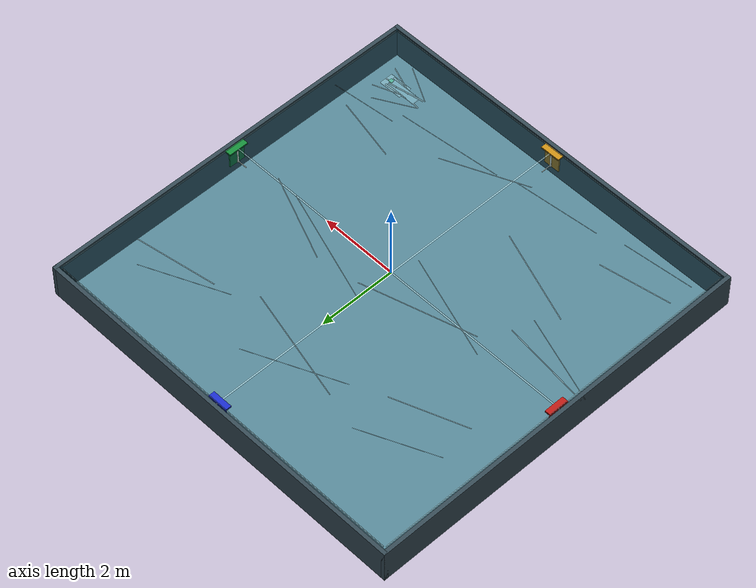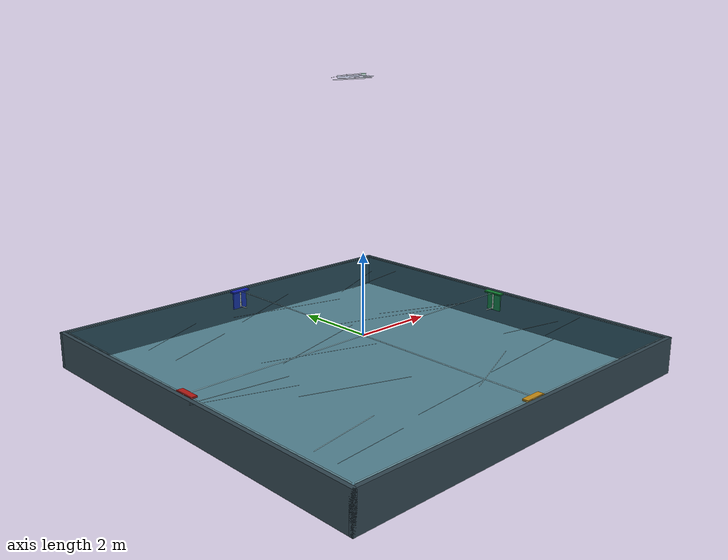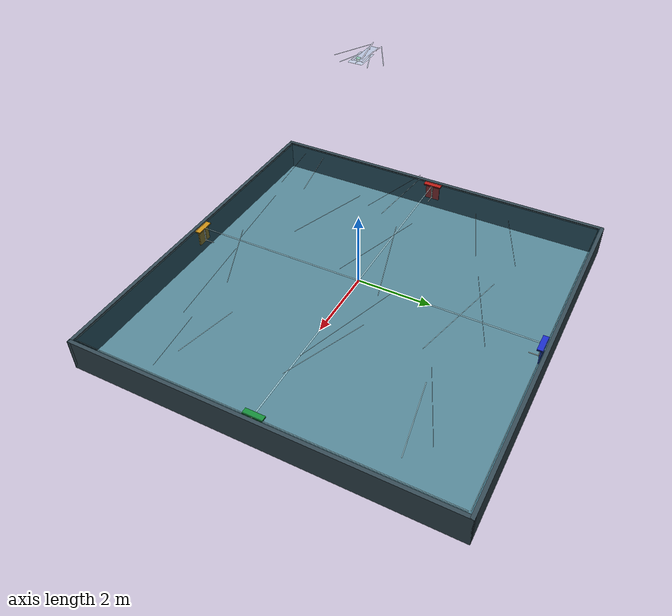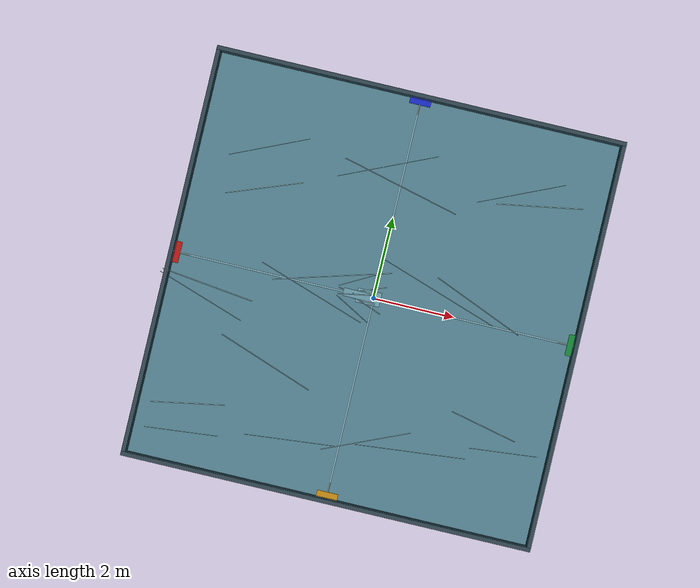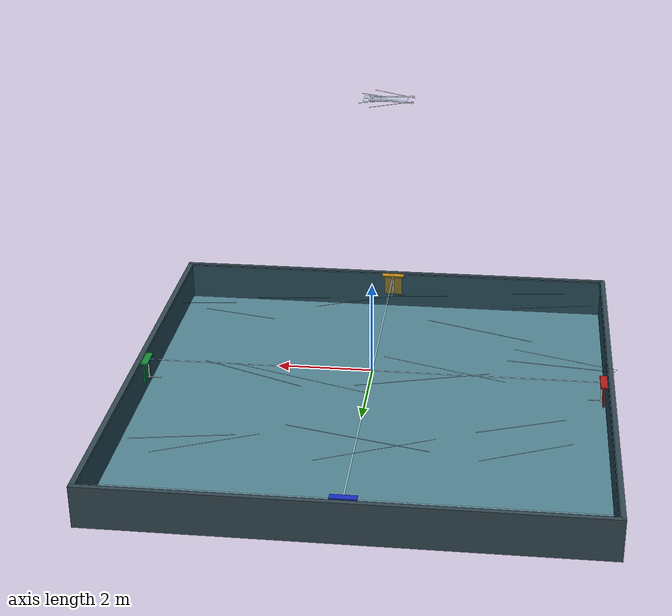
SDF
<sdf version="1.9">
 <world name="kki_rov_pool">
  <physics name="underwater_physics" type="ode">
   <max_step_size>@PHYSICS_STEP_SIZE@</max_step_size>
   <real_time_factor>1.0</real_time_factor>
  </physics>
  <plugin filename="gz-sim-physics-system" name="gz::sim::systems::Physics"/>
  <plugin filename="gz-sim-user-commands-system" name="gz::sim::systems::UserCommands"/>
  <plugin filename="gz-sim-scene-broadcaster-system" name="gz::sim::systems::SceneBroadcaster"/>
  <plugin filename="gz-sim-sensors-system" name="gz::sim::systems::Sensors">
   <render_engine>ogre2</render_engine>
  </plugin>
  <scene>
   <ambient>0.07 0.16 0.19 1</ambient>
   <background>0.005 0.030 0.045 1</background>
   <grid>false</grid>
   <fog>
    <type>linear</type>
    <color>0.02 0.13 0.16 1</color>
    <start>1.8</start>
    <end>8.5</end>
    <density>0.08</density>
   </fog>
  </scene>
  <light type="directional" name="sun">
   <pose>0 0 6 0 0 0</pose>
   <diffuse>0.62 0.82 0.92 1</diffuse>
   <specular>0.55 0.70 0.75 1</specular>
   <direction>-0.4 0.2 -0.9</direction>
  </light>
  <light type="point" name="pool_fill_light">
   <pose>0 0 1.4 0 0 0</pose>
   <diffuse>0.12 0.46 0.58 1</diffuse>
   <specular>0.28 0.52 0.60 1</specular>
   <attenuation>
    <range>12</range>
    <linear>0.06</linear>
    <constant>0.35</constant>
    <quadratic>0.01</quadratic>
   </attenuation>
  </light>
  <model name="pool_floor">
   <static>true</static>
   <link name="link">
    <collision name="collision"><geometry><box><size>10.0 10.0 0.06</size></box></geometry></collision>
    <visual name="visual">
     <geometry><box><size>10.0 10.0 0.06</size></box></geometry>
     <material><ambient>0.38 0.50 0.55 1</ambient><diffuse>0.42 0.58 0.63 1</diffuse></material>
    </visual>
   </link>
   <pose>0 0 -0.88 0 0 0</pose>
  </model>
  <model name="pool_floor_markings">
   <static>true</static>
   <pose>0 0 -0.842 0 0 0</pose>
   <link name="link">
    <visual name="center_line_x">
     <geometry><box><size>9.2 0.025 0.004</size></box></geometry>
     <material><ambient>0.86 0.90 0.88 0.45</ambient><diffuse>0.86 0.90 0.88 0.45</diffuse></material>
     <transparency>0.55</transparency>
    </visual>
    <visual name="center_line_y">
     <geometry><box><size>0.025 9.2 0.004</size></box></geometry>
     <material><ambient>0.86 0.90 0.88 0.45</ambient><diffuse>0.86 0.90 0.88 0.45</diffuse></material>
     <transparency>0.55</transparency>
    </visual>
    <visual name="tile_line_x_neg">
     <pose>-2.5 0 0 0 0 0</pose>
     <geometry><box><size>0.016 9.2 0.004</size></box></geometry>
     <material><ambient>0.70 0.82 0.84 0.32</ambient><diffuse>0.70 0.82 0.84 0.32</diffuse></material>
     <transparency>0.68</transparency>
    </visual>
    <visual name="tile_line_x_pos">
     <pose>2.5 0 0 0 0 0</pose>
     <geometry><box><size>0.016 9.2 0.004</size></box></geometry>
     <material><ambient>0.70 0.82 0.84 0.32</ambient><diffuse>0.70 0.82 0.84 0.32</diffuse></material>
     <transparency>0.68</transparency>
    </visual>
    <visual name="tile_line_y_neg">
     <pose>0 -2.5 0 0 0 0</pose>
     <geometry><box><size>9.2 0.016 0.004</size></box></geometry>
     <material><ambient>0.70 0.82 0.84 0.32</ambient><diffuse>0.70 0.82 0.84 0.32</diffuse></material>
     <transparency>0.68</transparency>
    </visual>
    <visual name="tile_line_y_pos">
     <pose>0 2.5 0 0 0 0</pose>
     <geometry><box><size>9.2 0.016 0.004</size></box></geometry>
     <material><ambient>0.70 0.82 0.84 0.32</ambient><diffuse>0.70 0.82 0.84 0.32</diffuse></material>
     <transparency>0.68</transparency>
    </visual>
   </link>
  </model>
  <model name="water_surface">
   <static>true</static>
   <link name="link">
    <visual name="surface_visual">
     <geometry><plane><normal>0 0 1</normal><size>10.0 10.0</size></plane></geometry>
     <material>
      <ambient>0.015 0.16 0.22 0.26</ambient>
      <diffuse>0.03 0.38 0.50 0.26</diffuse>
      <specular>0.92 0.98 1.0 0.95</specular>
     </material>
     <transparency>0.42</transparency>
    </visual>
    <visual name="surface_under_glass">
     <pose>0 0 -0.010 0 0 0</pose>
     <geometry><box><size>9.95 9.95 0.006</size></box></geometry>
     <material>
      <ambient>0.00 0.18 0.24 0.16</ambient>
      <diffuse>0.02 0.32 0.42 0.16</diffuse>
      <specular>0.85 0.96 1.0 0.75</specular>
     </material>
     <transparency>0.86</transparency>
    </visual>
    <visual name="surface_highlight_x">
     <pose>0 0 0.004 0 0 0</pose>
     <geometry><box><size>9.7 0.035 0.003</size></box></geometry>
     <material><ambient>0.75 0.95 1.0 0.45</ambient><diffuse>0.75 0.95 1.0 0.45</diffuse></material>
     <transparency>0.55</transparency>
    </visual>
    <visual name="surface_highlight_y">
     <pose>0 0 0.006 0 0 0</pose>
     <geometry><box><size>0.035 9.7 0.003</size></box></geometry>
     <material><ambient>0.75 0.95 1.0 0.45</ambient><diffuse>0.75 0.95 1.0 0.45</diffuse></material>
     <transparency>0.55</transparency>
    </visual>
    <visual name="meniscus_wall_x_pos">
     <pose>4.96 0 0.012 0 0 0</pose>
     <geometry><box><size>0.012 9.85 0.020</size></box></geometry>
     <material>
      <ambient>0.72 0.96 1.0 0.24</ambient>
      <diffuse>0.72 0.96 1.0 0.24</diffuse>
      <specular>0.90 1.0 1.0 0.65</specular>
     </material>
     <transparency>0.76</transparency>
    </visual>
    <visual name="meniscus_wall_x_neg">
     <pose>-4.96 0 0.012 0 0 0</pose>
     <geometry><box><size>0.012 9.85 0.020</size></box></geometry>
     <material>
      <ambient>0.72 0.96 1.0 0.24</ambient>
      <diffuse>0.72 0.96 1.0 0.24</diffuse>
      <specular>0.90 1.0 1.0 0.65</specular>
     </material>
     <transparency>0.76</transparency>
    </visual>
    <visual name="meniscus_wall_y_pos">
     <pose>0 4.96 0.012 0 0 0</pose>
     <geometry><box><size>9.85 0.012 0.020</size></box></geometry>
     <material>
      <ambient>0.72 0.96 1.0 0.24</ambient>
      <diffuse>0.72 0.96 1.0 0.24</diffuse>
      <specular>0.90 1.0 1.0 0.65</specular>
     </material>
     <transparency>0.76</transparency>
    </visual>
    <visual name="meniscus_wall_y_neg">
     <pose>0 -4.96 0.012 0 0 0</pose>
     <geometry><box><size>9.85 0.012 0.020</size></box></geometry>
     <material>
      <ambient>0.72 0.96 1.0 0.24</ambient>
      <diffuse>0.72 0.96 1.0 0.24</diffuse>
      <specular>0.90 1.0 1.0 0.65</specular>
     </material>
     <transparency>0.76</transparency>
    </visual>
   </link>
  </model>
  <model name="water_surface_ripples">
   <static>true</static>
   <pose>0 0 0.012 0 0 0</pose>
   <link name="link">
    <visual name="ripple_1">
     <pose>-3.8 -3.5 0 0 0 0.18</pose>
     <geometry><box><size>1.8 0.020 0.002</size></box></geometry>
     <material>
      <ambient>0.82 0.97 1.0 0.30</ambient>
      <diffuse>0.82 0.97 1.0 0.30</diffuse>
      <specular>0.85 0.95 1.0 0.45</specular>
     </material>
     <transparency>0.70</transparency>
    </visual>
    <visual name="ripple_2">
     <pose>-2.2 -2.1 0 0 0 -0.34</pose>
     <geometry><box><size>2.5 0.018 0.002</size></box></geometry>
     <material>
      <ambient>0.82 0.97 1.0 0.26</ambient>
      <diffuse>0.82 0.97 1.0 0.26</diffuse>
      <specular>0.85 0.95 1.0 0.40</specular>
     </material>
     <transparency>0.74</transparency>
    </visual>
    <visual name="ripple_3">
     <pose>0.6 -3.4 0 0 0 0.41</pose>
     <geometry><box><size>2.2 0.016 0.002</size></box></geometry>
     <material>
      <ambient>0.82 0.97 1.0 0.22</ambient>
      <diffuse>0.82 0.97 1.0 0.22</diffuse>
      <specular>0.85 0.95 1.0 0.38</specular>
     </material>
     <transparency>0.78</transparency>
    </visual>
    <visual name="ripple_4">
     <pose>3.3 -2.4 0 0 0 -0.22</pose>
     <geometry><box><size>1.7 0.018 0.002</size></box></geometry>
     <material>
      <ambient>0.82 0.97 1.0 0.26</ambient>
      <diffuse>0.82 0.97 1.0 0.26</diffuse>
      <specular>0.85 0.95 1.0 0.40</specular>
     </material>
     <transparency>0.74</transparency>
    </visual>
    <visual name="ripple_5">
     <pose>-4.0 -0.6 0 0 0 -0.12</pose>
     <geometry><box><size>2.3 0.020 0.002</size></box></geometry>
     <material>
      <ambient>0.82 0.97 1.0 0.30</ambient>
      <diffuse>0.82 0.97 1.0 0.30</diffuse>
      <specular>0.85 0.95 1.0 0.45</specular>
     </material>
     <transparency>0.70</transparency>
    </visual>
    <visual name="ripple_6">
     <pose>-1.1 0.3 0 0 0 0.28</pose>
     <geometry><box><size>2.9 0.018 0.002</size></box></geometry>
     <material>
      <ambient>0.82 0.97 1.0 0.22</ambient>
      <diffuse>0.82 0.97 1.0 0.22</diffuse>
      <specular>0.85 0.95 1.0 0.38</specular>
     </material>
     <transparency>0.78</transparency>
    </visual>
    <visual name="ripple_7">
     <pose>2.5 0.4 0 0 0 -0.39</pose>
     <geometry><box><size>2.4 0.016 0.002</size></box></geometry>
     <material>
      <ambient>0.82 0.97 1.0 0.24</ambient>
      <diffuse>0.82 0.97 1.0 0.24</diffuse>
      <specular>0.85 0.95 1.0 0.38</specular>
     </material>
     <transparency>0.76</transparency>
    </visual>
    <visual name="ripple_8">
     <pose>-3.2 2.0 0 0 0 0.36</pose>
     <geometry><box><size>1.9 0.018 0.002</size></box></geometry>
     <material>
      <ambient>0.82 0.97 1.0 0.28</ambient>
      <diffuse>0.82 0.97 1.0 0.28</diffuse>
      <specular>0.85 0.95 1.0 0.42</specular>
     </material>
     <transparency>0.72</transparency>
    </visual>
    <visual name="ripple_9">
     <pose>0.0 2.8 0 0 0 -0.24</pose>
     <geometry><box><size>3.0 0.017 0.002</size></box></geometry>
     <material>
      <ambient>0.82 0.97 1.0 0.22</ambient>
      <diffuse>0.82 0.97 1.0 0.22</diffuse>
      <specular>0.85 0.95 1.0 0.38</specular>
     </material>
     <transparency>0.78</transparency>
    </visual>
    <visual name="ripple_10">
     <pose>3.4 3.1 0 0 0 0.17</pose>
     <geometry><box><size>2.1 0.020 0.002</size></box></geometry>
     <material>
      <ambient>0.82 0.97 1.0 0.30</ambient>
      <diffuse>0.82 0.97 1.0 0.30</diffuse>
      <specular>0.85 0.95 1.0 0.45</specular>
     </material>
     <transparency>0.70</transparency>
    </visual>
   </link>
  </model>
  <model name="water_surface_wavefield">
   <static>true</static>
   <pose>0 0 0.019 0 0 0</pose>
   <link name="link">
    <visual name="wave_train_a_1">
     <pose>-3.8 -4.2 0 0 0 0.10</pose>
     <geometry><box><size>1.8 0.010 0.002</size></box></geometry>
     <material>
      <ambient>0.75 0.96 1.0 0.20</ambient>
      <diffuse>0.75 0.96 1.0 0.20</diffuse>
      <specular>0.95 1.0 1.0 0.50</specular>
     </material>
     <transparency>0.80</transparency>
    </visual>
    <visual name="wave_train_a_2">
     <pose>-1.2 -3.8 0 0 0 0.10</pose>
     <geometry><box><size>2.2 0.010 0.002</size></box></geometry>
     <material>
      <ambient>0.75 0.96 1.0 0.18</ambient>
      <diffuse>0.75 0.96 1.0 0.18</diffuse>
      <specular>0.95 1.0 1.0 0.48</specular>
     </material>
     <transparency>0.82</transparency>
    </visual>
    <visual name="wave_train_a_3">
     <pose>1.7 -3.4 0 0 0 0.10</pose>
     <geometry><box><size>2.7 0.010 0.002</size></box></geometry>
     <material>
      <ambient>0.75 0.96 1.0 0.20</ambient>
      <diffuse>0.75 0.96 1.0 0.20</diffuse>
      <specular>0.95 1.0 1.0 0.50</specular>
     </material>
     <transparency>0.80</transparency>
    </visual>
    <visual name="wave_train_a_4">
     <pose>3.9 -2.9 0 0 0 0.10</pose>
     <geometry><box><size>1.7 0.010 0.002</size></box></geometry>
     <material>
      <ambient>0.75 0.96 1.0 0.18</ambient>
      <diffuse>0.75 0.96 1.0 0.18</diffuse>
      <specular>0.95 1.0 1.0 0.48</specular>
     </material>
     <transparency>0.82</transparency>
    </visual>
    <visual name="wave_train_b_1">
     <pose>-4.1 -0.9 0 0 0 -0.32</pose>
     <geometry><box><size>2.3 0.011 0.002</size></box></geometry>
     <material>
      <ambient>0.82 0.98 1.0 0.16</ambient>
      <diffuse>0.82 0.98 1.0 0.16</diffuse>
      <specular>0.95 1.0 1.0 0.44</specular>
     </material>
     <transparency>0.84</transparency>
    </visual>
    <visual name="wave_train_b_2">
     <pose>-1.5 -0.2 0 0 0 -0.32</pose>
     <geometry><box><size>2.8 0.011 0.002</size></box></geometry>
     <material>
      <ambient>0.82 0.98 1.0 0.16</ambient>
      <diffuse>0.82 0.98 1.0 0.16</diffuse>
      <specular>0.95 1.0 1.0 0.44</specular>
     </material>
     <transparency>0.84</transparency>
    </visual>
    <visual name="wave_train_b_3">
     <pose>1.5 0.5 0 0 0 -0.32</pose>
     <geometry><box><size>3.1 0.011 0.002</size></box></geometry>
     <material>
      <ambient>0.82 0.98 1.0 0.17</ambient>
      <diffuse>0.82 0.98 1.0 0.17</diffuse>
      <specular>0.95 1.0 1.0 0.46</specular>
     </material>
     <transparency>0.83</transparency>
    </visual>
    <visual name="wave_train_c_1">
     <pose>-3.3 3.0 0 0 0 0.42</pose>
     <geometry><box><size>2.0 0.010 0.002</size></box></geometry>
     <material>
      <ambient>0.70 0.92 1.0 0.15</ambient>
      <diffuse>0.70 0.92 1.0 0.15</diffuse>
      <specular>0.95 1.0 1.0 0.42</specular>
     </material>
     <transparency>0.85</transparency>
    </visual>
    <visual name="wave_train_c_2">
     <pose>-0.4 3.2 0 0 0 0.42</pose>
     <geometry><box><size>2.5 0.010 0.002</size></box></geometry>
     <material>
      <ambient>0.70 0.92 1.0 0.16</ambient>
      <diffuse>0.70 0.92 1.0 0.16</diffuse>
      <specular>0.95 1.0 1.0 0.44</specular>
     </material>
     <transparency>0.84</transparency>
    </visual>
    <visual name="wave_train_c_3">
     <pose>2.9 3.3 0 0 0 0.42</pose>
     <geometry><box><size>2.2 0.010 0.002</size></box></geometry>
     <material>
      <ambient>0.70 0.92 1.0 0.15</ambient>
      <diffuse>0.70 0.92 1.0 0.15</diffuse>
      <specular>0.95 1.0 1.0 0.42</specular>
     </material>
     <transparency>0.85</transparency>
    </visual>
   </link>
  </model>
  <model name="water_volume">
   <static>true</static>
   <pose>0 0 -0.43 0 0 0</pose>
   <link name="link">
    <visual name="volume_visual">
     <geometry><box><size>9.9 9.9 0.84</size></box></geometry>
     <material>
      <ambient>0.00 0.16 0.24 0.18</ambient>
      <diffuse>0.02 0.34 0.50 0.18</diffuse>
      <specular>0.20 0.35 0.42 0.25</specular>
     </material>
     <transparency>0.82</transparency>
    </visual>
   </link>
  </model>
  <model name="underwater_depth_haze">
   <static>true</static>
   <link name="link">
    <visual name="upper_haze">
     <pose>0 0 -0.20 0 0 0</pose>
     <geometry><box><size>9.85 9.85 0.22</size></box></geometry>
     <material><ambient>0.00 0.12 0.16 0.10</ambient><diffuse>0.01 0.23 0.28 0.10</diffuse></material>
     <transparency>0.92</transparency>
    </visual>
    <visual name="mid_haze">
     <pose>0 0 -0.48 0 0 0</pose>
     <geometry><box><size>9.85 9.85 0.28</size></box></geometry>
     <material><ambient>0.00 0.10 0.13 0.16</ambient><diffuse>0.01 0.19 0.24 0.16</diffuse></material>
     <transparency>0.88</transparency>
    </visual>
    <visual name="bottom_haze">
     <pose>0 0 -0.73 0 0 0</pose>
     <geometry><box><size>9.85 9.85 0.20</size></box></geometry>
     <material><ambient>0.00 0.08 0.10 0.20</ambient><diffuse>0.01 0.15 0.19 0.20</diffuse></material>
     <transparency>0.84</transparency>
    </visual>
   </link>
  </model>
  <model name="suspended_particles">
   <static>true</static>
   <link name="link">
    <visual name="particle_01">
     <pose>-4.2 -2.8 -0.25 0 0 0</pose>
     <geometry><sphere><radius>0.006</radius></sphere></geometry>
     <material><ambient>0.80 0.95 0.90 0.18</ambient><diffuse>0.80 0.95 0.90 0.18</diffuse></material>
     <transparency>0.82</transparency>
    </visual>
    <visual name="particle_02">
     <pose>-3.6 1.9 -0.44 0 0 0</pose>
     <geometry><sphere><radius>0.004</radius></sphere></geometry>
     <material><ambient>0.80 0.95 0.90 0.16</ambient><diffuse>0.80 0.95 0.90 0.16</diffuse></material>
     <transparency>0.84</transparency>
    </visual>
    <visual name="particle_03">
     <pose>-3.1 3.4 -0.62 0 0 0</pose>
     <geometry><sphere><radius>0.005</radius></sphere></geometry>
     <material><ambient>0.80 0.95 0.90 0.17</ambient><diffuse>0.80 0.95 0.90 0.17</diffuse></material>
     <transparency>0.83</transparency>
    </visual>
    <visual name="particle_04">
     <pose>-2.5 -3.8 -0.55 0 0 0</pose>
     <geometry><sphere><radius>0.004</radius></sphere></geometry>
     <material><ambient>0.80 0.95 0.90 0.16</ambient><diffuse>0.80 0.95 0.90 0.16</diffuse></material>
     <transparency>0.84</transparency>
    </visual>
    <visual name="particle_05">
     <pose>-1.8 -0.8 -0.32 0 0 0</pose>
     <geometry><sphere><radius>0.006</radius></sphere></geometry>
     <material><ambient>0.80 0.95 0.90 0.18</ambient><diffuse>0.80 0.95 0.90 0.18</diffuse></material>
     <transparency>0.82</transparency>
    </visual>
    <visual name="particle_06">
     <pose>-1.2 2.6 -0.70 0 0 0</pose>
     <geometry><sphere><radius>0.004</radius></sphere></geometry>
     <material><ambient>0.80 0.95 0.90 0.16</ambient><diffuse>0.80 0.95 0.90 0.16</diffuse></material>
     <transparency>0.84</transparency>
    </visual>
    <visual name="particle_07">
     <pose>-0.5 -4.1 -0.40 0 0 0</pose>
     <geometry><sphere><radius>0.005</radius></sphere></geometry>
     <material><ambient>0.80 0.95 0.90 0.17</ambient><diffuse>0.80 0.95 0.90 0.17</diffuse></material>
     <transparency>0.83</transparency>
    </visual>
    <visual name="particle_08">
     <pose>0.2 -1.7 -0.58 0 0 0</pose>
     <geometry><sphere><radius>0.006</radius></sphere></geometry>
     <material><ambient>0.80 0.95 0.90 0.18</ambient><diffuse>0.80 0.95 0.90 0.18</diffuse></material>
     <transparency>0.82</transparency>
    </visual>
    <visual name="particle_09">
     <pose>0.9 3.7 -0.28 0 0 0</pose>
     <geometry><sphere><radius>0.004</radius></sphere></geometry>
     <material><ambient>0.80 0.95 0.90 0.16</ambient><diffuse>0.80 0.95 0.90 0.16</diffuse></material>
     <transparency>0.84</transparency>
    </visual>
    <visual name="particle_10">
     <pose>1.5 0.9 -0.68 0 0 0</pose>
     <geometry><sphere><radius>0.005</radius></sphere></geometry>
     <material><ambient>0.80 0.95 0.90 0.17</ambient><diffuse>0.80 0.95 0.90 0.17</diffuse></material>
     <transparency>0.83</transparency>
    </visual>
    <visual name="particle_11">
     <pose>2.1 -2.9 -0.22 0 0 0</pose>
     <geometry><sphere><radius>0.004</radius></sphere></geometry>
     <material><ambient>0.80 0.95 0.90 0.16</ambient><diffuse>0.80 0.95 0.90 0.16</diffuse></material>
     <transparency>0.84</transparency>
    </visual>
    <visual name="particle_12">
     <pose>2.8 2.1 -0.50 0 0 0</pose>
     <geometry><sphere><radius>0.006</radius></sphere></geometry>
     <material><ambient>0.80 0.95 0.90 0.18</ambient><diffuse>0.80 0.95 0.90 0.18</diffuse></material>
     <transparency>0.82</transparency>
    </visual>
    <visual name="particle_13">
     <pose>3.4 -0.2 -0.72 0 0 0</pose>
     <geometry><sphere><radius>0.004</radius></sphere></geometry>
     <material><ambient>0.80 0.95 0.90 0.16</ambient><diffuse>0.80 0.95 0.90 0.16</diffuse></material>
     <transparency>0.84</transparency>
    </visual>
    <visual name="particle_14">
     <pose>4.0 3.2 -0.36 0 0 0</pose>
     <geometry><sphere><radius>0.005</radius></sphere></geometry>
     <material><ambient>0.80 0.95 0.90 0.17</ambient><diffuse>0.80 0.95 0.90 0.17</diffuse></material>
     <transparency>0.83</transparency>
    </visual>
    <visual name="particle_15">
     <pose>4.3 -3.5 -0.60 0 0 0</pose>
     <geometry><sphere><radius>0.006</radius></sphere></geometry>
     <material><ambient>0.80 0.95 0.90 0.18</ambient><diffuse>0.80 0.95 0.90 0.18</diffuse></material>
     <transparency>0.82</transparency>
    </visual>
    <visual name="particle_16">
     <pose>-0.1 0.2 -0.24 0 0 0</pose>
     <geometry><sphere><radius>0.004</radius></sphere></geometry>
     <material><ambient>0.80 0.95 0.90 0.16</ambient><diffuse>0.80 0.95 0.90 0.16</diffuse></material>
     <transparency>0.84</transparency>
    </visual>
   </link>
  </model>
  <model name="bubble_columns">
   <static>true</static>
   <link name="link">
    <visual name="bubble_1">
     <pose>-4.4 -4.0 -0.70 0 0 0</pose>
     <geometry><sphere><radius>0.018</radius></sphere></geometry>
     <material><ambient>0.80 0.96 1.0 0.34</ambient><diffuse>0.80 0.96 1.0 0.34</diffuse></material>
     <transparency>0.66</transparency>
    </visual>
    <visual name="bubble_2">
     <pose>-4.3 -3.9 -0.52 0 0 0</pose>
     <geometry><sphere><radius>0.012</radius></sphere></geometry>
     <material><ambient>0.80 0.96 1.0 0.30</ambient><diffuse>0.80 0.96 1.0 0.30</diffuse></material>
     <transparency>0.70</transparency>
    </visual>
    <visual name="bubble_3">
     <pose>-4.5 -4.1 -0.32 0 0 0</pose>
     <geometry><sphere><radius>0.015</radius></sphere></geometry>
     <material><ambient>0.80 0.96 1.0 0.32</ambient><diffuse>0.80 0.96 1.0 0.32</diffuse></material>
     <transparency>0.68</transparency>
    </visual>
    <visual name="bubble_4">
     <pose>-4.35 -4.05 -0.13 0 0 0</pose>
     <geometry><sphere><radius>0.010</radius></sphere></geometry>
     <material><ambient>0.80 0.96 1.0 0.28</ambient><diffuse>0.80 0.96 1.0 0.28</diffuse></material>
     <transparency>0.72</transparency>
    </visual>
    <visual name="bubble_5">
     <pose>4.2 -3.7 -0.68 0 0 0</pose>
     <geometry><sphere><radius>0.014</radius></sphere></geometry>
     <material><ambient>0.80 0.96 1.0 0.30</ambient><diffuse>0.80 0.96 1.0 0.30</diffuse></material>
     <transparency>0.70</transparency>
    </visual>
    <visual name="bubble_6">
     <pose>4.3 -3.8 -0.44 0 0 0</pose>
     <geometry><sphere><radius>0.018</radius></sphere></geometry>
     <material><ambient>0.80 0.96 1.0 0.34</ambient><diffuse>0.80 0.96 1.0 0.34</diffuse></material>
     <transparency>0.66</transparency>
    </visual>
    <visual name="bubble_7">
     <pose>4.1 -3.6 -0.22 0 0 0</pose>
     <geometry><sphere><radius>0.011</radius></sphere></geometry>
     <material><ambient>0.80 0.96 1.0 0.28</ambient><diffuse>0.80 0.96 1.0 0.28</diffuse></material>
     <transparency>0.72</transparency>
    </visual>
    <visual name="bubble_8">
     <pose>-3.9 4.0 -0.62 0 0 0</pose>
     <geometry><sphere><radius>0.016</radius></sphere></geometry>
     <material><ambient>0.80 0.96 1.0 0.32</ambient><diffuse>0.80 0.96 1.0 0.32</diffuse></material>
     <transparency>0.68</transparency>
    </visual>
    <visual name="bubble_9">
     <pose>-4.1 3.8 -0.36 0 0 0</pose>
     <geometry><sphere><radius>0.012</radius></sphere></geometry>
     <material><ambient>0.80 0.96 1.0 0.30</ambient><diffuse>0.80 0.96 1.0 0.30</diffuse></material>
     <transparency>0.70</transparency>
    </visual>
    <visual name="bubble_10">
     <pose>-4.0 3.9 -0.12 0 0 0</pose>
     <geometry><sphere><radius>0.010</radius></sphere></geometry>
     <material><ambient>0.80 0.96 1.0 0.28</ambient><diffuse>0.80 0.96 1.0 0.28</diffuse></material>
     <transparency>0.72</transparency>
    </visual>
    <visual name="bubble_11">
     <pose>3.8 4.2 -0.58 0 0 0</pose>
     <geometry><sphere><radius>0.017</radius></sphere></geometry>
     <material><ambient>0.80 0.96 1.0 0.33</ambient><diffuse>0.80 0.96 1.0 0.33</diffuse></material>
     <transparency>0.67</transparency>
    </visual>
    <visual name="bubble_12">
     <pose>4.0 4.0 -0.30 0 0 0</pose>
     <geometry><sphere><radius>0.012</radius></sphere></geometry>
     <material><ambient>0.80 0.96 1.0 0.30</ambient><diffuse>0.80 0.96 1.0 0.30</diffuse></material>
     <transparency>0.70</transparency>
    </visual>
   </link>
  </model>
  <model name="floor_caustics">
   <static>true</static>
   <pose>0 0 -0.845 0 0 0.35</pose>
   <link name="link">
    <visual name="caustic_1">
     <pose>-3.8 -3.2 0 0 0 0.20</pose>
     <geometry><box><size>2.2 0.018 0.004</size></box></geometry>
     <material><ambient>0.55 0.95 1.0 0.35</ambient><diffuse>0.55 0.95 1.0 0.35</diffuse></material>
     <transparency>0.62</transparency>
    </visual>
    <visual name="caustic_2">
     <pose>-1.5 -2.2 0 0 0 -0.28</pose>
     <geometry><box><size>2.8 0.018 0.004</size></box></geometry>
     <material><ambient>0.55 0.95 1.0 0.35</ambient><diffuse>0.55 0.95 1.0 0.35</diffuse></material>
     <transparency>0.62</transparency>
    </visual>
    <visual name="caustic_3">
     <pose>1.9 -3.0 0 0 0 0.36</pose>
     <geometry><box><size>2.5 0.018 0.004</size></box></geometry>
     <material><ambient>0.55 0.95 1.0 0.35</ambient><diffuse>0.55 0.95 1.0 0.35</diffuse></material>
     <transparency>0.62</transparency>
    </visual>
    <visual name="caustic_4">
     <pose>3.6 -1.2 0 0 0 -0.15</pose>
     <geometry><box><size>2.1 0.018 0.004</size></box></geometry>
     <material><ambient>0.55 0.95 1.0 0.35</ambient><diffuse>0.55 0.95 1.0 0.35</diffuse></material>
     <transparency>0.62</transparency>
    </visual>
    <visual name="caustic_5">
     <pose>-3.4 0.2 0 0 0 -0.22</pose>
     <geometry><box><size>2.7 0.018 0.004</size></box></geometry>
     <material><ambient>0.55 0.95 1.0 0.35</ambient><diffuse>0.55 0.95 1.0 0.35</diffuse></material>
     <transparency>0.62</transparency>
    </visual>
    <visual name="caustic_6">
     <pose>-0.2 0.8 0 0 0 0.31</pose>
     <geometry><box><size>3.0 0.018 0.004</size></box></geometry>
     <material><ambient>0.55 0.95 1.0 0.35</ambient><diffuse>0.55 0.95 1.0 0.35</diffuse></material>
     <transparency>0.62</transparency>
    </visual>
    <visual name="caustic_7">
     <pose>3.2 1.2 0 0 0 -0.33</pose>
     <geometry><box><size>2.4 0.018 0.004</size></box></geometry>
     <material><ambient>0.55 0.95 1.0 0.35</ambient><diffuse>0.55 0.95 1.0 0.35</diffuse></material>
     <transparency>0.62</transparency>
    </visual>
    <visual name="caustic_8">
     <pose>-2.1 3.1 0 0 0 0.18</pose>
     <geometry><box><size>2.6 0.018 0.004</size></box></geometry>
     <material><ambient>0.55 0.95 1.0 0.35</ambient><diffuse>0.55 0.95 1.0 0.35</diffuse></material>
     <transparency>0.62</transparency>
    </visual>
    <visual name="caustic_9">
     <pose>1.5 3.3 0 0 0 -0.26</pose>
     <geometry><box><size>2.9 0.018 0.004</size></box></geometry>
     <material><ambient>0.55 0.95 1.0 0.35</ambient><diffuse>0.55 0.95 1.0 0.35</diffuse></material>
     <transparency>0.62</transparency>
    </visual>
   </link>
  </model>
  <model name="pool_wall_north">
   <static>true</static>
   <pose>0 5.05 -0.43 0 0 0</pose>
   <link name="link">
    <collision name="collision"><geometry><box><size>10.2 0.10 0.90</size></box></geometry></collision>
    <visual name="visual">
     <geometry><box><size>10.2 0.10 0.90</size></box></geometry>
     <material><ambient>0.16 0.22 0.26 1</ambient><diffuse>0.20 0.28 0.32 1</diffuse></material>
    </visual>
   </link>
  </model>
  <model name="pool_wall_south">
   <static>true</static>
   <pose>0 -5.05 -0.43 0 0 0</pose>
   <link name="link">
    <collision name="collision"><geometry><box><size>10.2 0.10 0.90</size></box></geometry></collision>
    <visual name="visual">
     <geometry><box><size>10.2 0.10 0.90</size></box></geometry>
     <material><ambient>0.16 0.22 0.26 1</ambient><diffuse>0.20 0.28 0.32 1</diffuse></material>
    </visual>
   </link>
  </model>
  <model name="pool_wall_east">
   <static>true</static>
   <pose>5.05 0 -0.43 0 0 0</pose>
   <link name="link">
    <collision name="collision"><geometry><box><size>0.10 10.2 0.90</size></box></geometry></collision>
    <visual name="visual">
     <geometry><box><size>0.10 10.2 0.90</size></box></geometry>
     <material><ambient>0.16 0.22 0.26 1</ambient><diffuse>0.20 0.28 0.32 1</diffuse></material>
    </visual>
   </link>
  </model>
  <model name="pool_wall_west">
   <static>true</static>
   <pose>-5.05 0 -0.43 0 0 0</pose>
   <link name="link">
    <collision name="collision"><geometry><box><size>0.10 10.2 0.90</size></box></geometry></collision>
    <visual name="visual">
     <geometry><box><size>0.10 10.2 0.90</size></box></geometry>
     <material><ambient>0.16 0.22 0.26 1</ambient><diffuse>0.20 0.28 0.32 1</diffuse></material>
    </visual>
   </link>
  </model>
  <model name="hook_A">
   <static>true</static>
   <pose>-4.86 0 -0.43 0 0 0</pose>
   <link name="link">
    <visual name="wall_marker">
     <pose>-0.050 0 0.190 0 0 0</pose>
     <geometry><box><size>0.035 0.42 0.50</size></box></geometry>
     <material><ambient>0.45 0.06 0.05 1</ambient><diffuse>0.62 0.09 0.07 1</diffuse></material>
    </visual>
    <visual name="top_clamp">
     <pose>-0.035 0 0.425 0 0 0</pose>
     <geometry><box><size>0.16 0.52 0.045</size></box></geometry>
     <material><ambient>0.58 0.08 0.06 1</ambient><diffuse>0.72 0.10 0.08 1</diffuse></material>
    </visual>
    <visual name="top_wall_pipe">
     <pose>-0.050 0 0.420 0 1.5708 0</pose>
     <geometry><cylinder><radius>0.018</radius><length>0.14</length></cylinder></geometry>
     <material>
      <ambient>0.90 0.90 0.84 1</ambient>
      <diffuse>0.96 0.96 0.90 1</diffuse>
      <specular>0.55 0.55 0.50 1</specular>
     </material>
    </visual>
    <visual name="vertical_pvc">
     <pose>0.000 0 0.205 0 0 0</pose>
     <geometry><cylinder><radius>0.018</radius><length>0.43</length></cylinder></geometry>
     <material>
      <ambient>0.90 0.90 0.84 1</ambient>
      <diffuse>0.96 0.96 0.90 1</diffuse>
      <specular>0.55 0.55 0.50 1</specular>
     </material>
    </visual>
    <visual name="lower_elbow">
     <geometry><sphere><radius>0.026</radius></sphere></geometry>
     <material><ambient>0.86 0.86 0.80 1</ambient><diffuse>0.94 0.94 0.88 1</diffuse></material>
    </visual>
    <visual name="peg">
     <pose>0.130 0 0.000 0 1.5708 0</pose>
     <geometry><cylinder><radius>0.010</radius><length>0.26</length></cylinder></geometry>
     <material><ambient>0.92 0.92 0.86 1</ambient><diffuse>0.98 0.98 0.92 1</diffuse></material>
    </visual>
    <collision name="wall_marker_collision">
     <pose>-0.050 0 0.190 0 0 0</pose>
     <geometry><box><size>0.035 0.42 0.50</size></box></geometry>
    </collision>
    <collision name="top_clamp_collision">
     <pose>-0.035 0 0.425 0 0 0</pose>
     <geometry><box><size>0.16 0.52 0.045</size></box></geometry>
    </collision>
    <collision name="vertical_pvc_collision">
     <pose>0.000 0 0.205 0 0 0</pose>
     <geometry><cylinder><radius>0.018</radius><length>0.43</length></cylinder></geometry>
    </collision>
    <collision name="lower_elbow_collision">
     <geometry><sphere><radius>0.026</radius></sphere></geometry>
    </collision>
    <collision name="peg_collision">
     <pose>0.130 0 0.000 0 1.5708 0</pose>
     <geometry><cylinder><radius>0.010</radius><length>0.26</length></cylinder></geometry>
    </collision>
   </link>
  </model>
  <model name="hook_B">
   <static>true</static>
   <pose>4.86 0 -0.43 0 0 0</pose>
   <link name="link">
    <visual name="wall_marker">
     <pose>0.050 0 0.190 0 0 0</pose>
     <geometry><box><size>0.035 0.42 0.50</size></box></geometry>
     <material><ambient>0.04 0.30 0.12 1</ambient><diffuse>0.06 0.45 0.18 1</diffuse></material>
    </visual>
    <visual name="top_clamp">
     <pose>0.035 0 0.425 0 0 0</pose>
     <geometry><box><size>0.16 0.52 0.045</size></box></geometry>
     <material><ambient>0.05 0.36 0.14 1</ambient><diffuse>0.08 0.54 0.22 1</diffuse></material>
    </visual>
    <visual name="top_wall_pipe">
     <pose>0.050 0 0.420 0 1.5708 0</pose>
     <geometry><cylinder><radius>0.018</radius><length>0.14</length></cylinder></geometry>
     <material>
      <ambient>0.90 0.90 0.84 1</ambient>
      <diffuse>0.96 0.96 0.90 1</diffuse>
      <specular>0.55 0.55 0.50 1</specular>
     </material>
    </visual>
    <visual name="vertical_pvc">
     <pose>0.000 0 0.205 0 0 0</pose>
     <geometry><cylinder><radius>0.018</radius><length>0.43</length></cylinder></geometry>
     <material>
      <ambient>0.90 0.90 0.84 1</ambient>
      <diffuse>0.96 0.96 0.90 1</diffuse>
      <specular>0.55 0.55 0.50 1</specular>
     </material>
    </visual>
    <visual name="lower_elbow">
     <geometry><sphere><radius>0.026</radius></sphere></geometry>
     <material><ambient>0.86 0.86 0.80 1</ambient><diffuse>0.94 0.94 0.88 1</diffuse></material>
    </visual>
    <visual name="peg">
     <pose>-0.130 0 0.000 0 1.5708 0</pose>
     <geometry><cylinder><radius>0.010</radius><length>0.26</length></cylinder></geometry>
     <material><ambient>0.92 0.92 0.86 1</ambient><diffuse>0.98 0.98 0.92 1</diffuse></material>
    </visual>
    <collision name="wall_marker_collision">
     <pose>0.050 0 0.190 0 0 0</pose>
     <geometry><box><size>0.035 0.42 0.50</size></box></geometry>
    </collision>
    <collision name="top_clamp_collision">
     <pose>0.035 0 0.425 0 0 0</pose>
     <geometry><box><size>0.16 0.52 0.045</size></box></geometry>
    </collision>
    <collision name="vertical_pvc_collision">
     <pose>0.000 0 0.205 0 0 0</pose>
     <geometry><cylinder><radius>0.018</radius><length>0.43</length></cylinder></geometry>
    </collision>
    <collision name="lower_elbow_collision">
     <geometry><sphere><radius>0.026</radius></sphere></geometry>
    </collision>
    <collision name="peg_collision">
     <pose>-0.130 0 0.000 0 1.5708 0</pose>
     <geometry><cylinder><radius>0.010</radius><length>0.26</length></cylinder></geometry>
    </collision>
   </link>
  </model>
  <model name="hook_C">
   <static>true</static>
   <pose>0 4.86 -0.43 0 0 0</pose>
   <link name="link">
    <visual name="wall_marker">
     <pose>0 0.050 0.190 0 0 0</pose>
     <geometry><box><size>0.42 0.035 0.50</size></box></geometry>
     <material><ambient>0.06 0.10 0.44 1</ambient><diffuse>0.09 0.15 0.66 1</diffuse></material>
    </visual>
    <visual name="top_clamp">
     <pose>0 0.035 0.425 0 0 0</pose>
     <geometry><box><size>0.52 0.16 0.045</size></box></geometry>
     <material><ambient>0.07 0.12 0.54 1</ambient><diffuse>0.10 0.17 0.78 1</diffuse></material>
    </visual>
    <visual name="top_wall_pipe">
     <pose>0 0.050 0.420 1.5708 0 0</pose>
     <geometry><cylinder><radius>0.018</radius><length>0.14</length></cylinder></geometry>
     <material>
      <ambient>0.90 0.90 0.84 1</ambient>
      <diffuse>0.96 0.96 0.90 1</diffuse>
      <specular>0.55 0.55 0.50 1</specular>
     </material>
    </visual>
    <visual name="vertical_pvc">
     <pose>0 0 0.205 0 0 0</pose>
     <geometry><cylinder><radius>0.018</radius><length>0.43</length></cylinder></geometry>
     <material>
      <ambient>0.90 0.90 0.84 1</ambient>
      <diffuse>0.96 0.96 0.90 1</diffuse>
      <specular>0.55 0.55 0.50 1</specular>
     </material>
    </visual>
    <visual name="lower_elbow">
     <geometry><sphere><radius>0.026</radius></sphere></geometry>
     <material><ambient>0.86 0.86 0.80 1</ambient><diffuse>0.94 0.94 0.88 1</diffuse></material>
    </visual>
    <visual name="peg">
     <pose>0 -0.130 0.000 1.5708 0 0</pose>
     <geometry><cylinder><radius>0.010</radius><length>0.26</length></cylinder></geometry>
     <material><ambient>0.92 0.92 0.86 1</ambient><diffuse>0.98 0.98 0.92 1</diffuse></material>
    </visual>
    <collision name="wall_marker_collision">
     <pose>0 0.050 0.190 0 0 0</pose>
     <geometry><box><size>0.42 0.035 0.50</size></box></geometry>
    </collision>
    <collision name="top_clamp_collision">
     <pose>0 0.035 0.425 0 0 0</pose>
     <geometry><box><size>0.52 0.16 0.045</size></box></geometry>
    </collision>
    <collision name="vertical_pvc_collision">
     <pose>0 0 0.205 0 0 0</pose>
     <geometry><cylinder><radius>0.018</radius><length>0.43</length></cylinder></geometry>
    </collision>
    <collision name="lower_elbow_collision">
     <geometry><sphere><radius>0.026</radius></sphere></geometry>
    </collision>
    <collision name="peg_collision">
     <pose>0 -0.130 0.000 1.5708 0 0</pose>
     <geometry><cylinder><radius>0.010</radius><length>0.26</length></cylinder></geometry>
    </collision>
   </link>
  </model>
  <model name="hook_D">
   <static>true</static>
   <pose>0 -4.86 -0.43 0 0 0</pose>
   <link name="link">
    <visual name="wall_marker">
     <pose>0 -0.050 0.190 0 0 0</pose>
     <geometry><box><size>0.42 0.035 0.50</size></box></geometry>
     <material><ambient>0.44 0.30 0.04 1</ambient><diffuse>0.66 0.46 0.06 1</diffuse></material>
    </visual>
    <visual name="top_clamp">
     <pose>0 -0.035 0.425 0 0 0</pose>
     <geometry><box><size>0.52 0.16 0.045</size></box></geometry>
     <material><ambient>0.55 0.38 0.05 1</ambient><diffuse>0.78 0.55 0.08 1</diffuse></material>
    </visual>
    <visual name="top_wall_pipe">
     <pose>0 -0.050 0.420 1.5708 0 0</pose>
     <geometry><cylinder><radius>0.018</radius><length>0.14</length></cylinder></geometry>
     <material>
      <ambient>0.90 0.90 0.84 1</ambient>
      <diffuse>0.96 0.96 0.90 1</diffuse>
      <specular>0.55 0.55 0.50 1</specular>
     </material>
    </visual>
    <visual name="vertical_pvc">
     <pose>0 0 0.205 0 0 0</pose>
     <geometry><cylinder><radius>0.018</radius><length>0.43</length></cylinder></geometry>
     <material>
      <ambient>0.90 0.90 0.84 1</ambient>
      <diffuse>0.96 0.96 0.90 1</diffuse>
      <specular>0.55 0.55 0.50 1</specular>
     </material>
    </visual>
    <visual name="lower_elbow">
     <geometry><sphere><radius>0.026</radius></sphere></geometry>
     <material><ambient>0.86 0.86 0.80 1</ambient><diffuse>0.94 0.94 0.88 1</diffuse></material>
    </visual>
    <visual name="peg">
     <pose>0 0.130 0.000 1.5708 0 0</pose>
     <geometry><cylinder><radius>0.010</radius><length>0.26</length></cylinder></geometry>
     <material><ambient>0.92 0.92 0.86 1</ambient><diffuse>0.98 0.98 0.92 1</diffuse></material>
    </visual>
    <collision name="wall_marker_collision">
     <pose>0 -0.050 0.190 0 0 0</pose>
     <geometry><box><size>0.42 0.035 0.50</size></box></geometry>
    </collision>
    <collision name="top_clamp_collision">
     <pose>0 -0.035 0.425 0 0 0</pose>
     <geometry><box><size>0.52 0.16 0.045</size></box></geometry>
    </collision>
    <collision name="vertical_pvc_collision">
     <pose>0 0 0.205 0 0 0</pose>
     <geometry><cylinder><radius>0.018</radius><length>0.43</length></cylinder></geometry>
    </collision>
    <collision name="lower_elbow_collision">
     <geometry><sphere><radius>0.026</radius></sphere></geometry>
    </collision>
    <collision name="peg_collision">
     <pose>0 0.130 0.000 1.5708 0 0</pose>
     <geometry><cylinder><radius>0.010</radius><length>0.26</length></cylinder></geometry>
    </collision>
   </link>
  </model>
  <include><name>rov_surface_wake</name><uri>model://rov_surface_wake</uri><pose>0 0 6 0 0 0</pose></include>
  <include><name>rov_thruster_wash</name><uri>model://rov_thruster_wash</uri><pose>0 0 6 0 0 0</pose></include>
  <include>
   <name>held_payload_collision_proxy</name>
   <uri>model://held_payload_collision_proxy</uri>
   <pose>0 0 6 0 0 0</pose>
  </include>
 </world>
</sdf>

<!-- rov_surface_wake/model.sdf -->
<sdf version="1.9">
  <model name="rov_surface_wake">
    <static>true</static>
    <link name="link">
      <visual name="wake_center">
        <pose>-0.22 0 0 0 0 0</pose>
        <geometry><box><size>0.72 0.018 0.003</size></box></geometry>
        <material>
          <ambient>0.78 0.96 1.0 0.40</ambient>
          <diffuse>0.78 0.96 1.0 0.40</diffuse>
          <specular>0.90 1.00 1.00 0.55</specular>
        </material>
        <transparency>0.58</transparency>
      </visual>
      <visual name="wake_left_inner">
        <pose>-0.18 0.16 0 0 0 0.36</pose>
        <geometry><box><size>0.86 0.017 0.003</size></box></geometry>
        <material><ambient>0.78 0.96 1.0 0.34</ambient><diffuse>0.78 0.96 1.0 0.34</diffuse><specular>0.90 1.00 1.00 0.48</specular></material>
        <transparency>0.66</transparency>
      </visual>
      <visual name="wake_right_inner">
        <pose>-0.18 -0.16 0 0 0 -0.36</pose>
        <geometry><box><size>0.86 0.017 0.003</size></box></geometry>
        <material><ambient>0.78 0.96 1.0 0.34</ambient><diffuse>0.78 0.96 1.0 0.34</diffuse><specular>0.90 1.00 1.00 0.48</specular></material>
        <transparency>0.66</transparency>
      </visual>
      <visual name="wake_left_outer">
        <pose>-0.42 0.34 0 0 0 0.50</pose>
        <geometry><box><size>0.94 0.014 0.003</size></box></geometry>
        <material><ambient>0.78 0.96 1.0 0.26</ambient><diffuse>0.78 0.96 1.0 0.26</diffuse><specular>0.90 1.00 1.00 0.42</specular></material>
        <transparency>0.74</transparency>
      </visual>
      <visual name="wake_right_outer">
        <pose>-0.42 -0.34 0 0 0 -0.50</pose>
        <geometry><box><size>0.94 0.014 0.003</size></box></geometry>
        <material><ambient>0.78 0.96 1.0 0.26</ambient><diffuse>0.78 0.96 1.0 0.26</diffuse><specular>0.90 1.00 1.00 0.42</specular></material>
        <transparency>0.74</transparency>
      </visual>
      <visual name="disturbed_patch">
        <pose>-0.12 0 -0.002 0 0 0</pose>
        <geometry><box><size>0.55 0.32 0.002</size></box></geometry>
        <material>
          <ambient>0.60 0.92 1.0 0.16</ambient>
          <diffuse>0.60 0.92 1.0 0.16</diffuse>
          <specular>0.85 1.00 1.0 0.40</specular>
        </material>
        <transparency>0.84</transparency>
      </visual>
    </link>
  </model>
</sdf>

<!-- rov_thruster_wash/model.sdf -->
<sdf version="1.9">
  <model name="rov_thruster_wash">
    <static>true</static>
    <link name="link">
      <visual name="center_turbulence">
        <pose>-0.34 0 0 0 0 0</pose>
        <geometry><box><size>0.72 0.18 0.030</size></box></geometry>
        <material>
          <ambient>0.45 0.80 0.90 0.10</ambient>
          <diffuse>0.45 0.80 0.90 0.10</diffuse>
          <specular>0.60 0.90 1.0 0.22</specular>
        </material>
        <transparency>0.90</transparency>
      </visual>
      <visual name="left_thruster_stream">
        <pose>-0.26 0.095 0 0 0 0.08</pose>
        <geometry><box><size>0.62 0.030 0.026</size></box></geometry>
        <material><ambient>0.70 0.95 1.0 0.20</ambient><diffuse>0.70 0.95 1.0 0.20</diffuse><specular>0.75 0.98 1.0 0.36</specular></material>
        <transparency>0.80</transparency>
      </visual>
      <visual name="right_thruster_stream">
        <pose>-0.26 -0.095 0 0 0 -0.08</pose>
        <geometry><box><size>0.62 0.030 0.026</size></box></geometry>
        <material><ambient>0.70 0.95 1.0 0.20</ambient><diffuse>0.70 0.95 1.0 0.20</diffuse><specular>0.75 0.98 1.0 0.36</specular></material>
        <transparency>0.80</transparency>
      </visual>
      <visual name="upper_shear">
        <pose>-0.42 0 0.045 0 0 0.18</pose>
        <geometry><box><size>0.82 0.018 0.016</size></box></geometry>
        <material><ambient>0.78 0.98 1.0 0.16</ambient><diffuse>0.78 0.98 1.0 0.16</diffuse><specular>0.80 1.0 1.0 0.30</specular></material>
        <transparency>0.84</transparency>
      </visual>
      <visual name="lower_shear">
        <pose>-0.42 0 -0.045 0 0 -0.18</pose>
        <geometry><box><size>0.82 0.018 0.016</size></box></geometry>
        <material><ambient>0.78 0.98 1.0 0.16</ambient><diffuse>0.78 0.98 1.0 0.16</diffuse><specular>0.80 1.0 1.0 0.30</specular></material>
        <transparency>0.84</transparency>
      </visual>
      <visual name="bubble_1"><pose>-0.18 0.050 0.035 0 0 0</pose><geometry><sphere><radius>0.012</radius></sphere></geometry><material><ambient>0.85 0.98 1.0 0.32</ambient><diffuse>0.85 0.98 1.0 0.32</diffuse></material><transparency>0.68</transparency></visual>
      <visual name="bubble_2"><pose>-0.30 -0.070 -0.018 0 0 0</pose><geometry><sphere><radius>0.008</radius></sphere></geometry><material><ambient>0.85 0.98 1.0 0.28</ambient><diffuse>0.85 0.98 1.0 0.28</diffuse></material><transparency>0.72</transparency></visual>
      <visual name="bubble_3"><pose>-0.48 0.015 0.055 0 0 0</pose><geometry><sphere><radius>0.010</radius></sphere></geometry><material><ambient>0.85 0.98 1.0 0.30</ambient><diffuse>0.85 0.98 1.0 0.30</diffuse></material><transparency>0.70</transparency></visual>
      <visual name="bubble_4"><pose>-0.58 -0.090 0.018 0 0 0</pose><geometry><sphere><radius>0.006</radius></sphere></geometry><material><ambient>0.85 0.98 1.0 0.25</ambient><diffuse>0.85 0.98 1.0 0.25</diffuse></material><transparency>0.75</transparency></visual>
      <visual name="bubble_5"><pose>-0.66 0.080 -0.040 0 0 0</pose><geometry><sphere><radius>0.007</radius></sphere></geometry><material><ambient>0.85 0.98 1.0 0.25</ambient><diffuse>0.85 0.98 1.0 0.25</diffuse></material><transparency>0.75</transparency></visual>
    </link>
  </model>
</sdf>

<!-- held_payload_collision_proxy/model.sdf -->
<sdf version="1.9">
  <model name="held_payload_collision_proxy">
    <static>true</static>
    <link name="proxy_link">
      <collision name="held_payload_body_collision">
        <geometry><box><size>0.064 0.064 0.104</size></box></geometry>
        <surface>
          <friction><ode><mu>1.2</mu><mu2>1.2</mu2></ode></friction>
          <contact><ode><kp>90000</kp><kd>9</kd></ode></contact>
        </surface>
      </collision>
      <collision name="held_payload_qr_plate_collision">
        <pose>0 0 0.052 0 0 0</pose>
        <geometry><box><size>0.084 0.084 0.006</size></box></geometry>
        <surface>
          <friction><ode><mu>0.9</mu><mu2>0.9</mu2></ode></friction>
          <contact><ode><kp>70000</kp><kd>7</kd></ode></contact>
        </surface>
      </collision>
      <visual name="collision_proxy_body_visual">
        <geometry><box><size>0.064 0.064 0.104</size></box></geometry>
        <material>
          <ambient>0.00 0.95 0.25 0.20</ambient>
          <diffuse>0.00 0.95 0.25 0.20</diffuse>
          <specular>0.60 1.00 0.70 0.35</specular>
        </material>
        <transparency>0.80</transparency>
      </visual>
      <visual name="collision_proxy_qr_plate_visual">
        <pose>0 0 0.054 0 0 0</pose>
        <geometry><box><size>0.084 0.084 0.004</size></box></geometry>
        <material>
          <ambient>0.00 1.00 0.45 0.25</ambient>
          <diffuse>0.00 1.00 0.45 0.25</diffuse>
          <specular>0.60 1.00 0.70 0.35</specular>
        </material>
        <transparency>0.75</transparency>
      </visual>
    </link>
  </model>
</sdf>
